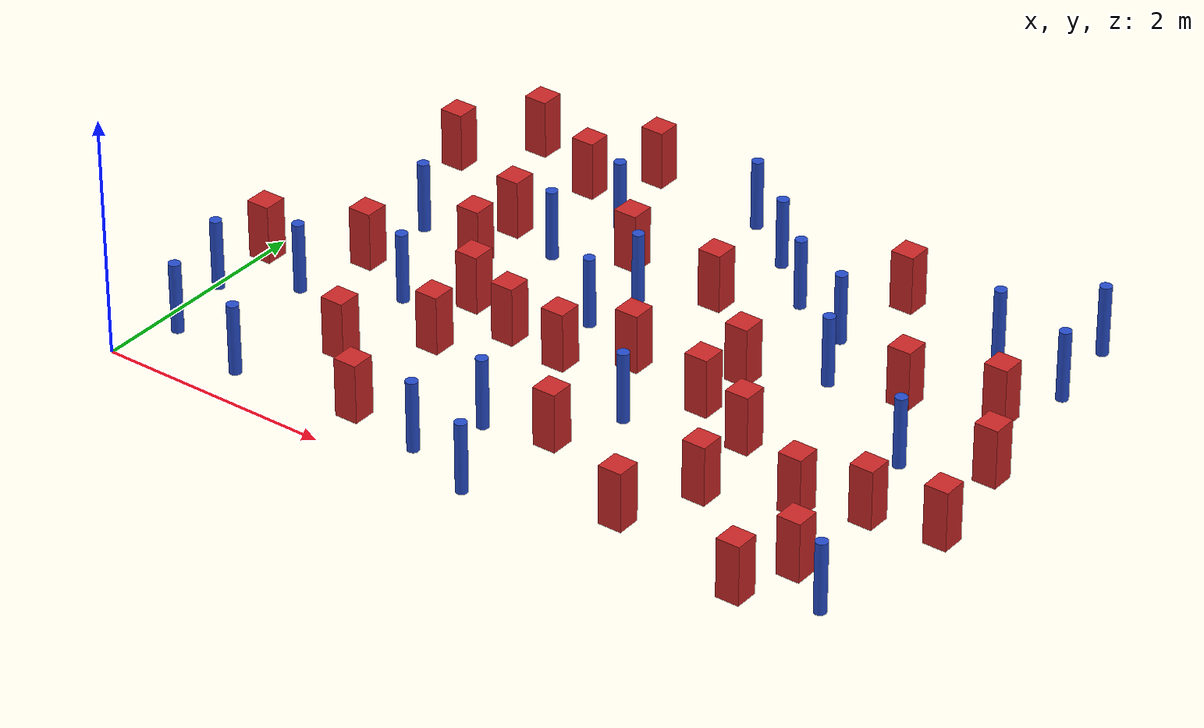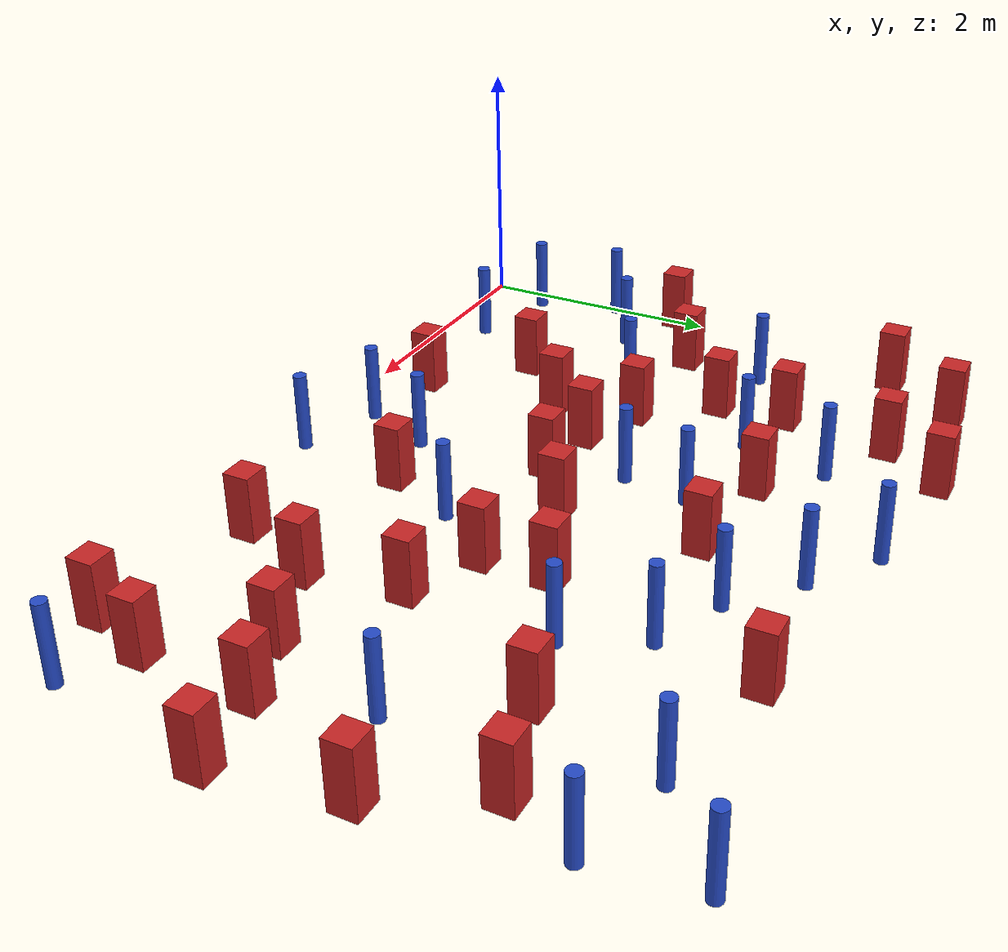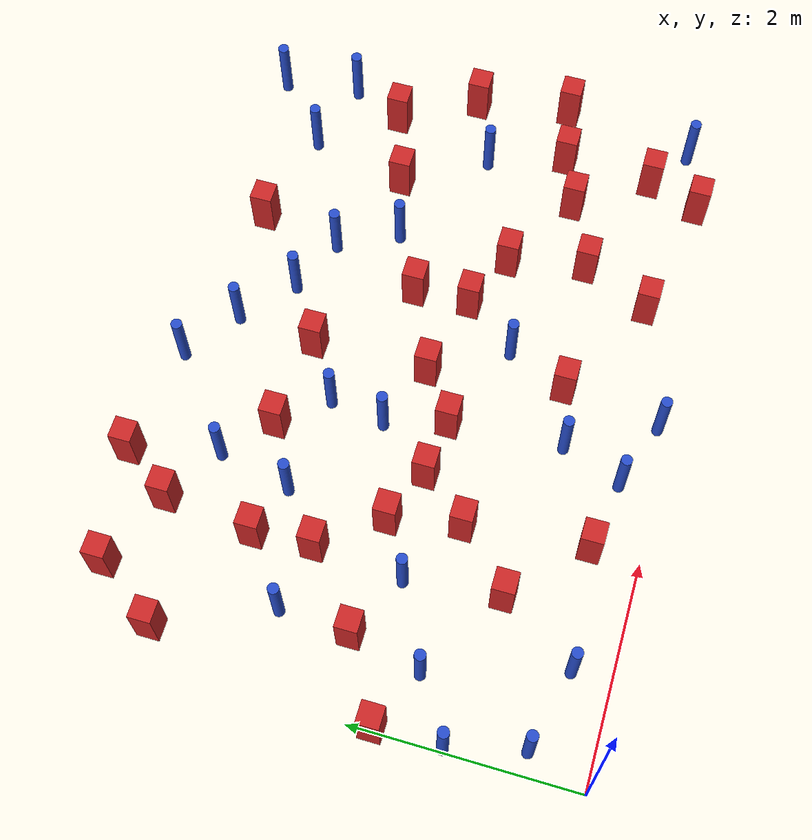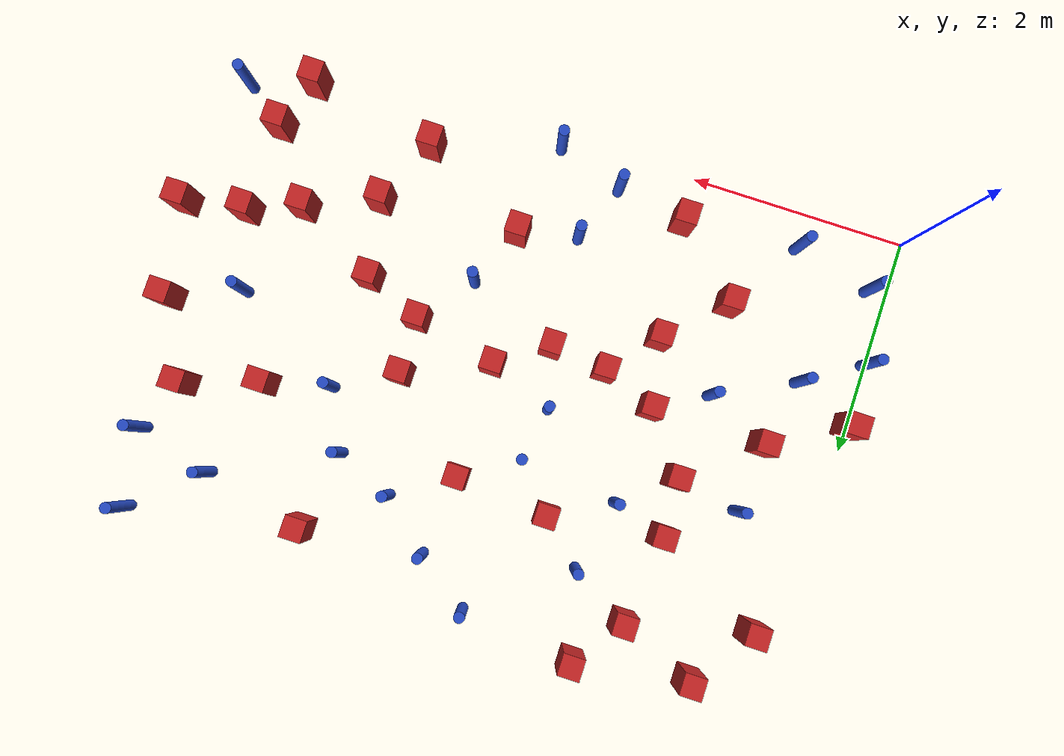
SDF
<sdf version="1.6">
 <model name="dense_56">
  <model name="square_post_obstacle0">
   <static>true</static>
   <pose>1.99976582621 0.442310010033 -6.11067671241e-07 -5.50515727128e-06 -8.79689657224e-07 2.37013304536e-05</pose>
   <link name="link">
    <pose>0 0 0.25 0 -0 0</pose>
    <inertial>
     <mass>100</mass>
     <inertia>
      <ixx>0.166667</ixx>
      <ixy>0</ixy>
      <ixz>0</ixz>
      <iyy>0.166667</iyy>
      <iyz>0</iyz>
      <izz>0.166667</izz>
     </inertia>
    </inertial>
    <collision name="collision"><geometry><box><size>.2 .2 .5</size></box></geometry></collision>
    <visual name="visual">
     <geometry><box><size>.2 .2 .5</size></box></geometry>
     <material>
      <script><name>Gazebo/Red</name><uri>file://media/materials/scripts/gazebo.material</uri></script>
     </material>
    </visual>
   </link>
  </model>
  <model name="square_post_obstacle4">
   <static>true</static>
   <pose>4.68333809107 1.11460655222 -6.11067671241e-07 -5.50515727128e-06 -8.79689657224e-07 2.37013304536e-05</pose>
   <link name="link">
    <pose>0 0 0.25 0 -0 0</pose>
    <inertial>
     <mass>100</mass>
     <inertia>
      <ixx>0.166667</ixx>
      <ixy>0</ixy>
      <ixz>0</ixz>
      <iyy>0.166667</iyy>
      <iyz>0</iyz>
      <izz>0.166667</izz>
     </inertia>
    </inertial>
    <collision name="collision"><geometry><box><size>.2 .2 .5</size></box></geometry></collision>
    <visual name="visual">
     <geometry><box><size>.2 .2 .5</size></box></geometry>
     <material>
      <script><name>Gazebo/Red</name><uri>file://media/materials/scripts/gazebo.material</uri></script>
     </material>
    </visual>
   </link>
  </model>
  <model name="square_post_obstacle5">
   <static>true</static>
   <pose>1.43845758457 4.05766834476 -6.11067671241e-07 -5.50515727128e-06 -8.79689657224e-07 2.37013304536e-05</pose>
   <link name="link">
    <pose>0 0 0.25 0 -0 0</pose>
    <inertial>
     <mass>100</mass>
     <inertia>
      <ixx>0.166667</ixx>
      <ixy>0</ixy>
      <ixz>0</ixz>
      <iyy>0.166667</iyy>
      <iyz>0</iyz>
      <izz>0.166667</izz>
     </inertia>
    </inertial>
    <collision name="collision"><geometry><box><size>.2 .2 .5</size></box></geometry></collision>
    <visual name="visual">
     <geometry><box><size>.2 .2 .5</size></box></geometry>
     <material>
      <script><name>Gazebo/Red</name><uri>file://media/materials/scripts/gazebo.material</uri></script>
     </material>
    </visual>
   </link>
  </model>
  <model name="square_post_obstacle10">
   <static>true</static>
   <pose>5.81792439504 1.58387289874 -6.11067671241e-07 -5.50515727128e-06 -8.79689657224e-07 2.37013304536e-05</pose>
   <link name="link">
    <pose>0 0 0.25 0 -0 0</pose>
    <inertial>
     <mass>100</mass>
     <inertia>
      <ixx>0.166667</ixx>
      <ixy>0</ixy>
      <ixz>0</ixz>
      <iyy>0.166667</iyy>
      <iyz>0</iyz>
      <izz>0.166667</izz>
     </inertia>
    </inertial>
    <collision name="collision"><geometry><box><size>.2 .2 .5</size></box></geometry></collision>
    <visual name="visual">
     <geometry><box><size>.2 .2 .5</size></box></geometry>
     <material>
      <script><name>Gazebo/Red</name><uri>file://media/materials/scripts/gazebo.material</uri></script>
     </material>
    </visual>
   </link>
  </model>
  <model name="square_post_obstacle16">
   <static>true</static>
   <pose>5.15076023287 3.03704496694 -6.11067671241e-07 -5.50515727128e-06 -8.79689657224e-07 2.37013304536e-05</pose>
   <link name="link">
    <pose>0 0 0.25 0 -0 0</pose>
    <inertial>
     <mass>100</mass>
     <inertia>
      <ixx>0.166667</ixx>
      <ixy>0</ixy>
      <ixz>0</ixz>
      <iyy>0.166667</iyy>
      <iyz>0</iyz>
      <izz>0.166667</izz>
     </inertia>
    </inertial>
    <collision name="collision"><geometry><box><size>.2 .2 .5</size></box></geometry></collision>
    <visual name="visual">
     <geometry><box><size>.2 .2 .5</size></box></geometry>
     <material>
      <script><name>Gazebo/Red</name><uri>file://media/materials/scripts/gazebo.material</uri></script>
     </material>
    </visual>
   </link>
  </model>
  <model name="pole_obstacle17">
   <static>true</static>
   <pose>3.76511676319 3.65166009717 -9.47619616065e-06 5.49618799737e-07 2.36310414051e-07 -1.55090534807e-07</pose>
   <link name="link">
    <pose>0 0 0.3 0 -0 0</pose>
    <inertial>
     <mass>1</mass>
     <inertia><ixx>0.145833</ixx><ixy>0</ixy><ixz>0</ixz><iyy>0.145833</iyy><iyz>0</iyz><izz>0.125</izz></inertia>
    </inertial>
    <collision name="collision">
     <geometry><cylinder><radius>0.05</radius><length>.6</length></cylinder></geometry>
    </collision>
    <visual name="visual">
     <geometry><cylinder><radius>0.05</radius><length>.6</length></cylinder></geometry>
     <material>
      <script><name>Gazebo/Blue</name><uri>file://media/materials/scripts/gazebo.material</uri></script>
     </material>
    </visual>
   </link>
  </model>
  <model name="square_post_obstacle33">
   <static>true</static>
   <pose>4.01620911778 2.05410688389 -6.11067671241e-07 -5.50515727128e-06 -8.79689657224e-07 2.37013304536e-05</pose>
   <link name="link">
    <pose>0 0 0.25 0 -0 0</pose>
    <inertial>
     <mass>100</mass>
     <inertia>
      <ixx>0.166667</ixx>
      <ixy>0</ixy>
      <ixz>0</ixz>
      <iyy>0.166667</iyy>
      <iyz>0</iyz>
      <izz>0.166667</izz>
     </inertia>
    </inertial>
    <collision name="collision"><geometry><box><size>.2 .2 .5</size></box></geometry></collision>
    <visual name="visual">
     <geometry><box><size>.2 .2 .5</size></box></geometry>
     <material>
      <script><name>Gazebo/Red</name><uri>file://media/materials/scripts/gazebo.material</uri></script>
     </material>
    </visual>
   </link>
  </model>
  <model name="square_post_obstacle36">
   <static>true</static>
   <pose>5.32715967315 1.39543265128 -6.11067671241e-07 -5.50515727128e-06 -8.79689657224e-07 2.37013304536e-05</pose>
   <link name="link">
    <pose>0 0 0.25 0 -0 0</pose>
    <inertial>
     <mass>100</mass>
     <inertia>
      <ixx>0.166667</ixx>
      <ixy>0</ixy>
      <ixz>0</ixz>
      <iyy>0.166667</iyy>
      <iyz>0</iyz>
      <izz>0.166667</izz>
     </inertia>
    </inertial>
    <collision name="collision"><geometry><box><size>.2 .2 .5</size></box></geometry></collision>
    <visual name="visual">
     <geometry><box><size>.2 .2 .5</size></box></geometry>
     <material>
      <script><name>Gazebo/Red</name><uri>file://media/materials/scripts/gazebo.material</uri></script>
     </material>
    </visual>
   </link>
  </model>
  <model name="pole_obstacle38">
   <static>true</static>
   <pose>2.86282230927 0.881759491907 -9.47619616065e-06 5.49618799738e-07 2.36310414075e-07 -1.55090534793e-07</pose>
   <link name="link">
    <pose>0 0 0.3 0 -0 0</pose>
    <inertial>
     <mass>1</mass>
     <inertia><ixx>0.145833</ixx><ixy>0</ixy><ixz>0</ixz><iyy>0.145833</iyy><iyz>0</iyz><izz>0.125</izz></inertia>
    </inertial>
    <collision name="collision">
     <geometry><cylinder><radius>0.05</radius><length>.6</length></cylinder></geometry>
    </collision>
    <visual name="visual">
     <geometry><cylinder><radius>0.05</radius><length>.6</length></cylinder></geometry>
     <material>
      <script><name>Gazebo/Blue</name><uri>file://media/materials/scripts/gazebo.material</uri></script>
     </material>
    </visual>
   </link>
  </model>
  <model name="square_post_obstacle38">
   <static>true</static>
   <pose>3.22928506262 3.29800616518 -6.11067671241e-07 -5.50515727128e-06 -8.79689657224e-07 2.37013304536e-05</pose>
   <link name="link">
    <pose>0 0 0.25 0 -0 0</pose>
    <inertial>
     <mass>100</mass>
     <inertia>
      <ixx>0.166667</ixx>
      <ixy>0</ixy>
      <ixz>0</ixz>
      <iyy>0.166667</iyy>
      <iyz>0</iyz>
      <izz>0.166667</izz>
     </inertia>
    </inertial>
    <collision name="collision"><geometry><box><size>.2 .2 .5</size></box></geometry></collision>
    <visual name="visual">
     <geometry><box><size>.2 .2 .5</size></box></geometry>
     <material>
      <script><name>Gazebo/Red</name><uri>file://media/materials/scripts/gazebo.material</uri></script>
     </material>
    </visual>
   </link>
  </model>
  <model name="square_post_obstacle46">
   <static>true</static>
   <pose>4.40503086688 0.486303597086 -6.11067671241e-07 -5.50515727128e-06 -8.79689657224e-07 2.37013304536e-05</pose>
   <link name="link">
    <pose>0 0 0.25 0 -0 0</pose>
    <inertial>
     <mass>100</mass>
     <inertia>
      <ixx>0.166667</ixx>
      <ixy>0</ixy>
      <ixz>0</ixz>
      <iyy>0.166667</iyy>
      <iyz>0</iyz>
      <izz>0.166667</izz>
     </inertia>
    </inertial>
    <collision name="collision"><geometry><box><size>.2 .2 .5</size></box></geometry></collision>
    <visual name="visual">
     <geometry><box><size>.2 .2 .5</size></box></geometry>
     <material>
      <script><name>Gazebo/Red</name><uri>file://media/materials/scripts/gazebo.material</uri></script>
     </material>
    </visual>
   </link>
  </model>
  <model name="square_post_obstacle52">
   <static>true</static>
   <pose>0.0257064140771 1.77946459958 -6.11067671241e-07 -5.50515727128e-06 -8.79689657224e-07 2.37013304536e-05</pose>
   <link name="link">
    <pose>0 0 0.25 0 -0 0</pose>
    <inertial>
     <mass>100</mass>
     <inertia>
      <ixx>0.166667</ixx>
      <ixy>0</ixy>
      <ixz>0</ixz>
      <iyy>0.166667</iyy>
      <iyz>0</iyz>
      <izz>0.166667</izz>
     </inertia>
    </inertial>
    <collision name="collision"><geometry><box><size>.2 .2 .5</size></box></geometry></collision>
    <visual name="visual">
     <geometry><box><size>.2 .2 .5</size></box></geometry>
     <material>
      <script><name>Gazebo/Red</name><uri>file://media/materials/scripts/gazebo.material</uri></script>
     </material>
    </visual>
   </link>
  </model>
  <model name="square_post_obstacle56">
   <static>true</static>
   <pose>6.2344315187 2.55958211341 -6.11067671241e-07 -5.50515727128e-06 -8.79689657224e-07 2.37013304536e-05</pose>
   <link name="link">
    <pose>0 0 0.25 0 -0 0</pose>
    <inertial>
     <mass>100</mass>
     <inertia>
      <ixx>0.166667</ixx>
      <ixy>0</ixy>
      <ixz>0</ixz>
      <iyy>0.166667</iyy>
      <iyz>0</iyz>
      <izz>0.166667</izz>
     </inertia>
    </inertial>
    <collision name="collision"><geometry><box><size>.2 .2 .5</size></box></geometry></collision>
    <visual name="visual">
     <geometry><box><size>.2 .2 .5</size></box></geometry>
     <material>
      <script><name>Gazebo/Red</name><uri>file://media/materials/scripts/gazebo.material</uri></script>
     </material>
    </visual>
   </link>
  </model>
  <model name="pole_obstacle59">
   <static>true</static>
   <pose>0.925027408041 0.346179515173 -9.47619616065e-06 5.49618799737e-07 2.36310414068e-07 -1.55090534796e-07</pose>
   <link name="link">
    <pose>0 0 0.3 0 -0 0</pose>
    <inertial>
     <mass>1</mass>
     <inertia><ixx>0.145833</ixx><ixy>0</ixy><ixz>0</ixz><iyy>0.145833</iyy><iyz>0</iyz><izz>0.125</izz></inertia>
    </inertial>
    <collision name="collision">
     <geometry><cylinder><radius>0.05</radius><length>.6</length></cylinder></geometry>
    </collision>
    <visual name="visual">
     <geometry><cylinder><radius>0.05</radius><length>.6</length></cylinder></geometry>
     <material>
      <script><name>Gazebo/Blue</name><uri>file://media/materials/scripts/gazebo.material</uri></script>
     </material>
    </visual>
   </link>
  </model>
  <model name="square_post_obstacle67">
   <static>true</static>
   <pose>0.333128637879 3.78804825467 -6.11067671241e-07 -5.50515727128e-06 -8.79689657224e-07 2.37013304536e-05</pose>
   <link name="link">
    <pose>0 0 0.25 0 -0 0</pose>
    <inertial>
     <mass>100</mass>
     <inertia>
      <ixx>0.166667</ixx>
      <ixy>0</ixy>
      <ixz>0</ixz>
      <iyy>0.166667</iyy>
      <iyz>0</iyz>
      <izz>0.166667</izz>
     </inertia>
    </inertial>
    <collision name="collision"><geometry><box><size>.2 .2 .5</size></box></geometry></collision>
    <visual name="visual">
     <geometry><box><size>.2 .2 .5</size></box></geometry>
     <material>
      <script><name>Gazebo/Red</name><uri>file://media/materials/scripts/gazebo.material</uri></script>
     </material>
    </visual>
   </link>
  </model>
  <model name="square_post_obstacle69">
   <static>true</static>
   <pose>1.76772093183 2.1682476589 -6.11067671241e-07 -5.50515727128e-06 -8.79689657224e-07 2.37013304536e-05</pose>
   <link name="link">
    <pose>0 0 0.25 0 -0 0</pose>
    <inertial>
     <mass>100</mass>
     <inertia>
      <ixx>0.166667</ixx>
      <ixy>0</ixy>
      <ixz>0</ixz>
      <iyy>0.166667</iyy>
      <iyz>0</iyz>
      <izz>0.166667</izz>
     </inertia>
    </inertial>
    <collision name="collision"><geometry><box><size>.2 .2 .5</size></box></geometry></collision>
    <visual name="visual">
     <geometry><box><size>.2 .2 .5</size></box></geometry>
     <material>
      <script><name>Gazebo/Red</name><uri>file://media/materials/scripts/gazebo.material</uri></script>
     </material>
    </visual>
   </link>
  </model>
  <model name="square_post_obstacle71">
   <static>true</static>
   <pose>4.41394076876 4.15950543328 -6.11067671241e-07 -5.50515727128e-06 -8.79689657224e-07 2.37013304536e-05</pose>
   <link name="link">
    <pose>0 0 0.25 0 -0 0</pose>
    <inertial>
     <mass>100</mass>
     <inertia>
      <ixx>0.166667</ixx>
      <ixy>0</ixy>
      <ixz>0</ixz>
      <iyy>0.166667</iyy>
      <iyz>0</iyz>
      <izz>0.166667</izz>
     </inertia>
    </inertial>
    <collision name="collision"><geometry><box><size>.2 .2 .5</size></box></geometry></collision>
    <visual name="visual">
     <geometry><box><size>.2 .2 .5</size></box></geometry>
     <material>
      <script><name>Gazebo/Red</name><uri>file://media/materials/scripts/gazebo.material</uri></script>
     </material>
    </visual>
   </link>
  </model>
  <model name="square_post_obstacle72">
   <static>true</static>
   <pose>4.54979881974 1.82802787597 -6.11067671241e-07 -5.50515727128e-06 -8.79689657224e-07 2.37013304536e-05</pose>
   <link name="link">
    <pose>0 0 0.25 0 -0 0</pose>
    <inertial>
     <mass>100</mass>
     <inertia>
      <ixx>0.166667</ixx>
      <ixy>0</ixy>
      <ixz>0</ixz>
      <iyy>0.166667</iyy>
      <iyz>0</iyz>
      <izz>0.166667</izz>
     </inertia>
    </inertial>
    <collision name="collision"><geometry><box><size>.2 .2 .5</size></box></geometry></collision>
    <visual name="visual">
     <geometry><box><size>.2 .2 .5</size></box></geometry>
     <material>
      <script><name>Gazebo/Red</name><uri>file://media/materials/scripts/gazebo.material</uri></script>
     </material>
    </visual>
   </link>
  </model>
  <model name="pole_obstacle76">
   <static>true</static>
   <pose>5.60401964578 2.29964641994 -9.47619616065e-06 5.49618799738e-07 2.36310414051e-07 -1.55090534805e-07</pose>
   <link name="link">
    <pose>0 0 0.3 0 -0 0</pose>
    <inertial>
     <mass>1</mass>
     <inertia><ixx>0.145833</ixx><ixy>0</ixy><ixz>0</ixz><iyy>0.145833</iyy><iyz>0</iyz><izz>0.125</izz></inertia>
    </inertial>
    <collision name="collision">
     <geometry><cylinder><radius>0.05</radius><length>.6</length></cylinder></geometry>
    </collision>
    <visual name="visual">
     <geometry><cylinder><radius>0.05</radius><length>.6</length></cylinder></geometry>
     <material>
      <script><name>Gazebo/Blue</name><uri>file://media/materials/scripts/gazebo.material</uri></script>
     </material>
    </visual>
   </link>
  </model>
  <model name="square_post_obstacle81">
   <static>true</static>
   <pose>1.37803710354 1.04155616456 -6.11067671241e-07 -5.50515727128e-06 -8.79689657224e-07 2.37013304536e-05</pose>
   <link name="link">
    <pose>0 0 0.25 0 -0 0</pose>
    <inertial>
     <mass>100</mass>
     <inertia>
      <ixx>0.166667</ixx>
      <ixy>0</ixy>
      <ixz>0</ixz>
      <iyy>0.166667</iyy>
      <iyz>0</iyz>
      <izz>0.166667</izz>
     </inertia>
    </inertial>
    <collision name="collision"><geometry><box><size>.2 .2 .5</size></box></geometry></collision>
    <visual name="visual">
     <geometry><box><size>.2 .2 .5</size></box></geometry>
     <material>
      <script><name>Gazebo/Red</name><uri>file://media/materials/scripts/gazebo.material</uri></script>
     </material>
    </visual>
   </link>
  </model>
  <model name="pole_obstacle93">
   <static>true</static>
   <pose>3.26941782002 0.120895018381 -9.47619616065e-06 5.49618799737e-07 2.36310414066e-07 -1.55090534798e-07</pose>
   <link name="link">
    <pose>0 0 0.3 0 -0 0</pose>
    <inertial>
     <mass>1</mass>
     <inertia><ixx>0.145833</ixx><ixy>0</ixy><ixz>0</ixz><iyy>0.145833</iyy><iyz>0</iyz><izz>0.125</izz></inertia>
    </inertial>
    <collision name="collision">
     <geometry><cylinder><radius>0.05</radius><length>.6</length></cylinder></geometry>
    </collision>
    <visual name="visual">
     <geometry><cylinder><radius>0.05</radius><length>.6</length></cylinder></geometry>
     <material>
      <script><name>Gazebo/Blue</name><uri>file://media/materials/scripts/gazebo.material</uri></script>
     </material>
    </visual>
   </link>
  </model>
  <model name="pole_obstacle95">
   <static>true</static>
   <pose>2.64689914589 0.333201132117 -9.47619616065e-06 5.49618799738e-07 2.36310414074e-07 -1.55090534794e-07</pose>
   <link name="link">
    <pose>0 0 0.3 0 -0 0</pose>
    <inertial>
     <mass>1</mass>
     <inertia><ixx>0.145833</ixx><ixy>0</ixy><ixz>0</ixz><iyy>0.145833</iyy><iyz>0</iyz><izz>0.125</izz></inertia>
    </inertial>
    <collision name="collision">
     <geometry><cylinder><radius>0.05</radius><length>.6</length></cylinder></geometry>
    </collision>
    <visual name="visual">
     <geometry><cylinder><radius>0.05</radius><length>.6</length></cylinder></geometry>
     <material>
      <script><name>Gazebo/Blue</name><uri>file://media/materials/scripts/gazebo.material</uri></script>
     </material>
    </visual>
   </link>
  </model>
  <model name="pole_obstacle96">
   <static>true</static>
   <pose>2.81538231102 4.40827197065 -9.47619616065e-06 5.49618799738e-07 2.3631041406e-07 -1.55090534801e-07</pose>
   <link name="link">
    <pose>0 0 0.3 0 -0 0</pose>
    <inertial>
     <mass>1</mass>
     <inertia><ixx>0.145833</ixx><ixy>0</ixy><ixz>0</ixz><iyy>0.145833</iyy><iyz>0</iyz><izz>0.125</izz></inertia>
    </inertial>
    <collision name="collision">
     <geometry><cylinder><radius>0.05</radius><length>.6</length></cylinder></geometry>
    </collision>
    <visual name="visual">
     <geometry><cylinder><radius>0.05</radius><length>.6</length></cylinder></geometry>
     <material>
      <script><name>Gazebo/Blue</name><uri>file://media/materials/scripts/gazebo.material</uri></script>
     </material>
    </visual>
   </link>
  </model>
  <model name="square_post_obstacle84">
   <static>true</static>
   <pose>0.739477897886 4.3556769147 -6.11067671241e-07 -5.50515727128e-06 -8.79689657224e-07 2.37013304536e-05</pose>
   <link name="link">
    <pose>0 0 0.25 0 -0 0</pose>
    <inertial>
     <mass>100</mass>
     <inertia>
      <ixx>0.166667</ixx>
      <ixy>0</ixy>
      <ixz>0</ixz>
      <iyy>0.166667</iyy>
      <iyz>0</iyz>
      <izz>0.166667</izz>
     </inertia>
    </inertial>
    <collision name="collision"><geometry><box><size>.2 .2 .5</size></box></geometry></collision>
    <visual name="visual">
     <geometry><box><size>.2 .2 .5</size></box></geometry>
     <material>
      <script><name>Gazebo/Red</name><uri>file://media/materials/scripts/gazebo.material</uri></script>
     </material>
    </visual>
   </link>
  </model>
  <model name="square_post_obstacle85">
   <static>true</static>
   <pose>3.24167538499 2.23248687007 -6.11067671241e-07 -5.50515727128e-06 -8.79689657224e-07 2.37013304536e-05</pose>
   <link name="link">
    <pose>0 0 0.25 0 -0 0</pose>
    <inertial>
     <mass>100</mass>
     <inertia>
      <ixx>0.166667</ixx>
      <ixy>0</ixy>
      <ixz>0</ixz>
      <iyy>0.166667</iyy>
      <iyz>0</iyz>
      <izz>0.166667</izz>
     </inertia>
    </inertial>
    <collision name="collision"><geometry><box><size>.2 .2 .5</size></box></geometry></collision>
    <visual name="visual">
     <geometry><box><size>.2 .2 .5</size></box></geometry>
     <material>
      <script><name>Gazebo/Red</name><uri>file://media/materials/scripts/gazebo.material</uri></script>
     </material>
    </visual>
   </link>
  </model>
  <model name="square_post_obstacle101">
   <static>true</static>
   <pose>1.33228030267 3.23295579836 -6.11067671241e-07 -5.50515727128e-06 -8.79689657224e-07 2.37013304536e-05</pose>
   <link name="link">
    <pose>0 0 0.25 0 -0 0</pose>
    <inertial>
     <mass>100</mass>
     <inertia>
      <ixx>0.166667</ixx>
      <ixy>0</ixy>
      <ixz>0</ixz>
      <iyy>0.166667</iyy>
      <iyz>0</iyz>
      <izz>0.166667</izz>
     </inertia>
    </inertial>
    <collision name="collision"><geometry><box><size>.2 .2 .5</size></box></geometry></collision>
    <visual name="visual">
     <geometry><box><size>.2 .2 .5</size></box></geometry>
     <material>
      <script><name>Gazebo/Red</name><uri>file://media/materials/scripts/gazebo.material</uri></script>
     </material>
    </visual>
   </link>
  </model>
  <model name="pole_obstacle118">
   <static>true</static>
   <pose>4.56173694156 2.88470015818 -9.47619616065e-06 5.49618799738e-07 2.36310414051e-07 -1.55090534805e-07</pose>
   <link name="link">
    <pose>0 0 0.3 0 -0 0</pose>
    <inertial>
     <mass>1</mass>
     <inertia><ixx>0.145833</ixx><ixy>0</ixy><ixz>0</ixz><iyy>0.145833</iyy><iyz>0</iyz><izz>0.125</izz></inertia>
    </inertial>
    <collision name="collision">
     <geometry><cylinder><radius>0.05</radius><length>.6</length></cylinder></geometry>
    </collision>
    <visual name="visual">
     <geometry><cylinder><radius>0.05</radius><length>.6</length></cylinder></geometry>
     <material>
      <script><name>Gazebo/Blue</name><uri>file://media/materials/scripts/gazebo.material</uri></script>
     </material>
    </visual>
   </link>
  </model>
  <model name="pole_obstacle126">
   <static>true</static>
   <pose>2.64059461518 2.47193051487 -9.47619616065e-06 5.49618799737e-07 2.36310414051e-07 -1.55090534807e-07</pose>
   <link name="link">
    <pose>0 0 0.3 0 -0 0</pose>
    <inertial>
     <mass>1</mass>
     <inertia><ixx>0.145833</ixx><ixy>0</ixy><ixz>0</ixz><iyy>0.145833</iyy><iyz>0</iyz><izz>0.125</izz></inertia>
    </inertial>
    <collision name="collision">
     <geometry><cylinder><radius>0.05</radius><length>.6</length></cylinder></geometry>
    </collision>
    <visual name="visual">
     <geometry><cylinder><radius>0.05</radius><length>.6</length></cylinder></geometry>
     <material>
      <script><name>Gazebo/Blue</name><uri>file://media/materials/scripts/gazebo.material</uri></script>
     </material>
    </visual>
   </link>
  </model>
  <model name="pole_obstacle127">
   <static>true</static>
   <pose>1.9676107457 3.75242339498 -9.47619616065e-06 5.49618799737e-07 2.36310414059e-07 -1.550905348e-07</pose>
   <link name="link">
    <pose>0 0 0.3 0 -0 0</pose>
    <inertial>
     <mass>1</mass>
     <inertia><ixx>0.145833</ixx><ixy>0</ixy><ixz>0</ixz><iyy>0.145833</iyy><iyz>0</iyz><izz>0.125</izz></inertia>
    </inertial>
    <collision name="collision">
     <geometry><cylinder><radius>0.05</radius><length>.6</length></cylinder></geometry>
    </collision>
    <visual name="visual">
     <geometry><cylinder><radius>0.05</radius><length>.6</length></cylinder></geometry>
     <material>
      <script><name>Gazebo/Blue</name><uri>file://media/materials/scripts/gazebo.material</uri></script>
     </material>
    </visual>
   </link>
  </model>
  <model name="pole_obstacle131">
   <static>true</static>
   <pose>0.563899085958 1.53096457339 -9.47619616065e-06 5.49618799738e-07 2.36310414061e-07 -1.55090534801e-07</pose>
   <link name="link">
    <pose>0 0 0.3 0 -0 0</pose>
    <inertial>
     <mass>1</mass>
     <inertia><ixx>0.145833</ixx><ixy>0</ixy><ixz>0</ixz><iyy>0.145833</iyy><iyz>0</iyz><izz>0.125</izz></inertia>
    </inertial>
    <collision name="collision">
     <geometry><cylinder><radius>0.05</radius><length>.6</length></cylinder></geometry>
    </collision>
    <visual name="visual">
     <geometry><cylinder><radius>0.05</radius><length>.6</length></cylinder></geometry>
     <material>
      <script><name>Gazebo/Blue</name><uri>file://media/materials/scripts/gazebo.material</uri></script>
     </material>
    </visual>
   </link>
  </model>
  <model name="pole_obstacle133">
   <static>true</static>
   <pose>3.64027596968 1.56775584052 -9.47619616065e-06 5.49618799737e-07 2.36310414072e-07 -1.55090534793e-07</pose>
   <link name="link">
    <pose>0 0 0.3 0 -0 0</pose>
    <inertial>
     <mass>1</mass>
     <inertia><ixx>0.145833</ixx><ixy>0</ixy><ixz>0</ixz><iyy>0.145833</iyy><iyz>0</iyz><izz>0.125</izz></inertia>
    </inertial>
    <collision name="collision">
     <geometry><cylinder><radius>0.05</radius><length>.6</length></cylinder></geometry>
    </collision>
    <visual name="visual">
     <geometry><cylinder><radius>0.05</radius><length>.6</length></cylinder></geometry>
     <material>
      <script><name>Gazebo/Blue</name><uri>file://media/materials/scripts/gazebo.material</uri></script>
     </material>
    </visual>
   </link>
  </model>
  <model name="pole_obstacle136">
   <static>true</static>
   <pose>5.36938665774 3.96076599892 -9.47619616065e-06 5.49618799737e-07 2.36310414054e-07 -1.55090534804e-07</pose>
   <link name="link">
    <pose>0 0 0.3 0 -0 0</pose>
    <inertial>
     <mass>1</mass>
     <inertia><ixx>0.145833</ixx><ixy>0</ixy><ixz>0</ixz><iyy>0.145833</iyy><iyz>0</iyz><izz>0.125</izz></inertia>
    </inertial>
    <collision name="collision">
     <geometry><cylinder><radius>0.05</radius><length>.6</length></cylinder></geometry>
    </collision>
    <visual name="visual">
     <geometry><cylinder><radius>0.05</radius><length>.6</length></cylinder></geometry>
     <material>
      <script><name>Gazebo/Blue</name><uri>file://media/materials/scripts/gazebo.material</uri></script>
     </material>
    </visual>
   </link>
  </model>
  <model name="square_post_obstacle119">
   <static>true</static>
   <pose>5.60643136561 0.258793017003 -6.11067671241e-07 -5.50515727128e-06 -8.79689657224e-07 2.37013304536e-05</pose>
   <link name="link">
    <pose>0 0 0.25 0 -0 0</pose>
    <inertial>
     <mass>100</mass>
     <inertia>
      <ixx>0.166667</ixx>
      <ixy>0</ixy>
      <ixz>0</ixz>
      <iyy>0.166667</iyy>
      <iyz>0</iyz>
      <izz>0.166667</izz>
     </inertia>
    </inertial>
    <collision name="collision"><geometry><box><size>.2 .2 .5</size></box></geometry></collision>
    <visual name="visual">
     <geometry><box><size>.2 .2 .5</size></box></geometry>
     <material>
      <script><name>Gazebo/Red</name><uri>file://media/materials/scripts/gazebo.material</uri></script>
     </material>
    </visual>
   </link>
  </model>
  <model name="square_post_obstacle124">
   <static>true</static>
   <pose>6.39183244544 1.68362561915 -6.11067671241e-07 -5.50515727128e-06 -8.79689657224e-07 2.37013304536e-05</pose>
   <link name="link">
    <pose>0 0 0.25 0 -0 0</pose>
    <inertial>
     <mass>100</mass>
     <inertia>
      <ixx>0.166667</ixx>
      <ixy>0</ixy>
      <ixz>0</ixz>
      <iyy>0.166667</iyy>
      <iyz>0</iyz>
      <izz>0.166667</izz>
     </inertia>
    </inertial>
    <collision name="collision"><geometry><box><size>.2 .2 .5</size></box></geometry></collision>
    <visual name="visual">
     <geometry><box><size>.2 .2 .5</size></box></geometry>
     <material>
      <script><name>Gazebo/Red</name><uri>file://media/materials/scripts/gazebo.material</uri></script>
     </material>
    </visual>
   </link>
  </model>
  <model name="pole_obstacle146">
   <static>true</static>
   <pose>6.19688774363 0.453857563228 -9.47619616065e-06 5.49618799737e-07 2.3631041407e-07 -1.55090534796e-07</pose>
   <link name="link">
    <pose>0 0 0.3 0 -0 0</pose>
    <inertial>
     <mass>1</mass>
     <inertia><ixx>0.145833</ixx><ixy>0</ixy><ixz>0</ixz><iyy>0.145833</iyy><iyz>0</iyz><izz>0.125</izz></inertia>
    </inertial>
    <collision name="collision">
     <geometry><cylinder><radius>0.05</radius><length>.6</length></cylinder></geometry>
    </collision>
    <visual name="visual">
     <geometry><cylinder><radius>0.05</radius><length>.6</length></cylinder></geometry>
     <material>
      <script><name>Gazebo/Blue</name><uri>file://media/materials/scripts/gazebo.material</uri></script>
     </material>
    </visual>
   </link>
  </model>
  <model name="pole_obstacle147">
   <static>true</static>
   <pose>1.81179698169 3.08271361004 -9.47619616065e-06 5.49618799737e-07 2.36310414062e-07 -1.55090534798e-07</pose>
   <link name="link">
    <pose>0 0 0.3 0 -0 0</pose>
    <inertial>
     <mass>1</mass>
     <inertia><ixx>0.145833</ixx><ixy>0</ixy><ixz>0</ixz><iyy>0.145833</iyy><iyz>0</iyz><izz>0.125</izz></inertia>
    </inertial>
    <collision name="collision">
     <geometry><cylinder><radius>0.05</radius><length>.6</length></cylinder></geometry>
    </collision>
    <visual name="visual">
     <geometry><cylinder><radius>0.05</radius><length>.6</length></cylinder></geometry>
     <material>
      <script><name>Gazebo/Blue</name><uri>file://media/materials/scripts/gazebo.material</uri></script>
     </material>
    </visual>
   </link>
  </model>
  <model name="square_post_obstacle137">
   <static>true</static>
   <pose>0.71732305236 2.17078598252 -6.11067671241e-07 -5.50515727128e-06 -8.79689657224e-07 2.37013304536e-05</pose>
   <link name="link">
    <pose>0 0 0.25 0 -0 0</pose>
    <inertial>
     <mass>100</mass>
     <inertia>
      <ixx>0.166667</ixx>
      <ixy>0</ixy>
      <ixz>0</ixz>
      <iyy>0.166667</iyy>
      <iyz>0</iyz>
      <izz>0.166667</izz>
     </inertia>
    </inertial>
    <collision name="collision"><geometry><box><size>.2 .2 .5</size></box></geometry></collision>
    <visual name="visual">
     <geometry><box><size>.2 .2 .5</size></box></geometry>
     <material>
      <script><name>Gazebo/Red</name><uri>file://media/materials/scripts/gazebo.material</uri></script>
     </material>
    </visual>
   </link>
  </model>
  <model name="square_post_obstacle150">
   <static>true</static>
   <pose>1.88636288929 1.53490131025 -6.11067671241e-07 -5.50515727128e-06 -8.79689657224e-07 2.37013304536e-05</pose>
   <link name="link">
    <pose>0 0 0.25 0 -0 0</pose>
    <inertial>
     <mass>100</mass>
     <inertia>
      <ixx>0.166667</ixx>
      <ixy>0</ixy>
      <ixz>0</ixz>
      <iyy>0.166667</iyy>
      <iyz>0</iyz>
      <izz>0.166667</izz>
     </inertia>
    </inertial>
    <collision name="collision"><geometry><box><size>.2 .2 .5</size></box></geometry></collision>
    <visual name="visual">
     <geometry><box><size>.2 .2 .5</size></box></geometry>
     <material>
      <script><name>Gazebo/Red</name><uri>file://media/materials/scripts/gazebo.material</uri></script>
     </material>
    </visual>
   </link>
  </model>
  <model name="square_post_obstacle157">
   <static>true</static>
   <pose>4.00620310391 2.5717258599 -6.11067671241e-07 -5.50515727128e-06 -8.79689657224e-07 2.37013304536e-05</pose>
   <link name="link">
    <pose>0 0 0.25 0 -0 0</pose>
    <inertial>
     <mass>100</mass>
     <inertia>
      <ixx>0.166667</ixx>
      <ixy>0</ixy>
      <ixz>0</ixz>
      <iyy>0.166667</iyy>
      <iyz>0</iyz>
      <izz>0.166667</izz>
     </inertia>
    </inertial>
    <collision name="collision"><geometry><box><size>.2 .2 .5</size></box></geometry></collision>
    <visual name="visual">
     <geometry><box><size>.2 .2 .5</size></box></geometry>
     <material>
      <script><name>Gazebo/Red</name><uri>file://media/materials/scripts/gazebo.material</uri></script>
     </material>
    </visual>
   </link>
  </model>
  <model name="pole_obstacle164">
   <static>true</static>
   <pose>0.757805686223 2.8145874232 -9.47619616065e-06 5.49618799737e-07 2.36310414066e-07 -1.55090534797e-07</pose>
   <link name="link">
    <pose>0 0 0.3 0 -0 0</pose>
    <inertial>
     <mass>1</mass>
     <inertia><ixx>0.145833</ixx><ixy>0</ixy><ixz>0</ixz><iyy>0.145833</iyy><iyz>0</iyz><izz>0.125</izz></inertia>
    </inertial>
    <collision name="collision">
     <geometry><cylinder><radius>0.05</radius><length>.6</length></cylinder></geometry>
    </collision>
    <visual name="visual">
     <geometry><cylinder><radius>0.05</radius><length>.6</length></cylinder></geometry>
     <material>
      <script><name>Gazebo/Blue</name><uri>file://media/materials/scripts/gazebo.material</uri></script>
     </material>
    </visual>
   </link>
  </model>
  <model name="pole_obstacle169">
   <static>true</static>
   <pose>0.03034951504 1.19016670045 -9.47619616065e-06 5.49618799737e-07 2.36310414056e-07 -1.55090534801e-07</pose>
   <link name="link">
    <pose>0 0 0.3 0 -0 0</pose>
    <inertial>
     <mass>1</mass>
     <inertia><ixx>0.145833</ixx><ixy>0</ixy><ixz>0</ixz><iyy>0.145833</iyy><iyz>0</iyz><izz>0.125</izz></inertia>
    </inertial>
    <collision name="collision">
     <geometry><cylinder><radius>0.05</radius><length>.6</length></cylinder></geometry>
    </collision>
    <visual name="visual">
     <geometry><cylinder><radius>0.05</radius><length>.6</length></cylinder></geometry>
     <material>
      <script><name>Gazebo/Blue</name><uri>file://media/materials/scripts/gazebo.material</uri></script>
     </material>
    </visual>
   </link>
  </model>
  <model name="pole_obstacle173">
   <static>true</static>
   <pose>1.28737014026 1.89392033038 -9.47619616065e-06 5.49618799737e-07 2.36310414065e-07 -1.55090534798e-07</pose>
   <link name="link">
    <pose>0 0 0.3 0 -0 0</pose>
    <inertial>
     <mass>1</mass>
     <inertia><ixx>0.145833</ixx><ixy>0</ixy><ixz>0</ixz><iyy>0.145833</iyy><iyz>0</iyz><izz>0.125</izz></inertia>
    </inertial>
    <collision name="collision">
     <geometry><cylinder><radius>0.05</radius><length>.6</length></cylinder></geometry>
    </collision>
    <visual name="visual">
     <geometry><cylinder><radius>0.05</radius><length>.6</length></cylinder></geometry>
     <material>
      <script><name>Gazebo/Blue</name><uri>file://media/materials/scripts/gazebo.material</uri></script>
     </material>
    </visual>
   </link>
  </model>
  <model name="pole_obstacle175">
   <static>true</static>
   <pose>0.195743922408 0.525670883698 -9.47619616065e-06 5.49618799738e-07 2.36310414058e-07 -1.55090534801e-07</pose>
   <link name="link">
    <pose>0 0 0.3 0 -0 0</pose>
    <inertial>
     <mass>1</mass>
     <inertia><ixx>0.145833</ixx><ixy>0</ixy><ixz>0</ixz><iyy>0.145833</iyy><iyz>0</iyz><izz>0.125</izz></inertia>
    </inertial>
    <collision name="collision">
     <geometry><cylinder><radius>0.05</radius><length>.6</length></cylinder></geometry>
    </collision>
    <visual name="visual">
     <geometry><cylinder><radius>0.05</radius><length>.6</length></cylinder></geometry>
     <material>
      <script><name>Gazebo/Blue</name><uri>file://media/materials/scripts/gazebo.material</uri></script>
     </material>
    </visual>
   </link>
  </model>
  <model name="square_post_obstacle165">
   <static>true</static>
   <pose>3.40453741087 1.01307192407 -6.11067671241e-07 -5.50515727128e-06 -8.79689657224e-07 2.37013304536e-05</pose>
   <link name="link">
    <pose>0 0 0.25 0 -0 0</pose>
    <inertial>
     <mass>100</mass>
     <inertia>
      <ixx>0.166667</ixx>
      <ixy>0</ixy>
      <ixz>0</ixz>
      <iyy>0.166667</iyy>
      <iyz>0</iyz>
      <izz>0.166667</izz>
     </inertia>
    </inertial>
    <collision name="collision"><geometry><box><size>.2 .2 .5</size></box></geometry></collision>
    <visual name="visual">
     <geometry><box><size>.2 .2 .5</size></box></geometry>
     <material>
      <script><name>Gazebo/Red</name><uri>file://media/materials/scripts/gazebo.material</uri></script>
     </material>
    </visual>
   </link>
  </model>
  <model name="square_post_obstacle168">
   <static>true</static>
   <pose>1.77524278214 4.52367774128 -6.11067671241e-07 -5.50515727128e-06 -8.79689657224e-07 2.37013304536e-05</pose>
   <link name="link">
    <pose>0 0 0.25 0 -0 0</pose>
    <inertial>
     <mass>100</mass>
     <inertia>
      <ixx>0.166667</ixx>
      <ixy>0</ixy>
      <ixz>0</ixz>
      <iyy>0.166667</iyy>
      <iyz>0</iyz>
      <izz>0.166667</izz>
     </inertia>
    </inertial>
    <collision name="collision"><geometry><box><size>.2 .2 .5</size></box></geometry></collision>
    <visual name="visual">
     <geometry><box><size>.2 .2 .5</size></box></geometry>
     <material>
      <script><name>Gazebo/Red</name><uri>file://media/materials/scripts/gazebo.material</uri></script>
     </material>
    </visual>
   </link>
  </model>
  <model name="pole_obstacle185">
   <static>true</static>
   <pose>3.30954706999 4.05271271793 -9.47619616065e-06 5.49618799738e-07 2.3631041406e-07 -1.55090534801e-07</pose>
   <link name="link">
    <pose>0 0 0.3 0 -0 0</pose>
    <inertial>
     <mass>1</mass>
     <inertia><ixx>0.145833</ixx><ixy>0</ixy><ixz>0</ixz><iyy>0.145833</iyy><iyz>0</iyz><izz>0.125</izz></inertia>
    </inertial>
    <collision name="collision">
     <geometry><cylinder><radius>0.05</radius><length>.6</length></cylinder></geometry>
    </collision>
    <visual name="visual">
     <geometry><cylinder><radius>0.05</radius><length>.6</length></cylinder></geometry>
     <material>
      <script><name>Gazebo/Blue</name><uri>file://media/materials/scripts/gazebo.material</uri></script>
     </material>
    </visual>
   </link>
  </model>
  <model name="square_post_obstacle173">
   <static>true</static>
   <pose>5.85066722193 3.26485960037 -6.11067671241e-07 -5.50515727128e-06 -8.79689657224e-07 2.37013304536e-05</pose>
   <link name="link">
    <pose>0 0 0.25 0 -0 0</pose>
    <inertial>
     <mass>100</mass>
     <inertia>
      <ixx>0.166667</ixx>
      <ixy>0</ixy>
      <ixz>0</ixz>
      <iyy>0.166667</iyy>
      <iyz>0</iyz>
      <izz>0.166667</izz>
     </inertia>
    </inertial>
    <collision name="collision"><geometry><box><size>.2 .2 .5</size></box></geometry></collision>
    <visual name="visual">
     <geometry><box><size>.2 .2 .5</size></box></geometry>
     <material>
      <script><name>Gazebo/Red</name><uri>file://media/materials/scripts/gazebo.material</uri></script>
     </material>
    </visual>
   </link>
  </model>
  <model name="square_post_obstacle186">
   <static>true</static>
   <pose>2.26548481791 1.97073641685 -6.11067671241e-07 -5.50515727128e-06 -8.79689657224e-07 2.37013304536e-05</pose>
   <link name="link">
    <pose>0 0 0.25 0 -0 0</pose>
    <inertial>
     <mass>100</mass>
     <inertia>
      <ixx>0.166667</ixx>
      <ixy>0</ixy>
      <ixz>0</ixz>
      <iyy>0.166667</iyy>
      <iyz>0</iyz>
      <izz>0.166667</izz>
     </inertia>
    </inertial>
    <collision name="collision"><geometry><box><size>.2 .2 .5</size></box></geometry></collision>
    <visual name="visual">
     <geometry><box><size>.2 .2 .5</size></box></geometry>
     <material>
      <script><name>Gazebo/Red</name><uri>file://media/materials/scripts/gazebo.material</uri></script>
     </material>
    </visual>
   </link>
  </model>
  <model name="square_post_obstacle198">
   <static>true</static>
   <pose>1.36275757598 2.69778762125 -6.11067671241e-07 -5.50515727128e-06 -8.79689657224e-07 2.37013304536e-05</pose>
   <link name="link">
    <pose>0 0 0.25 0 -0 0</pose>
    <inertial>
     <mass>100</mass>
     <inertia>
      <ixx>0.166667</ixx>
      <ixy>0</ixy>
      <ixz>0</ixz>
      <iyy>0.166667</iyy>
      <iyz>0</iyz>
      <izz>0.166667</izz>
     </inertia>
    </inertial>
    <collision name="collision"><geometry><box><size>.2 .2 .5</size></box></geometry></collision>
    <visual name="visual">
     <geometry><box><size>.2 .2 .5</size></box></geometry>
     <material>
      <script><name>Gazebo/Red</name><uri>file://media/materials/scripts/gazebo.material</uri></script>
     </material>
    </visual>
   </link>
  </model>
  <model name="pole_obstacle194">
   <static>true</static>
   <pose>6.06881353897 3.76559378281 -9.47619616065e-06 5.49618799738e-07 2.36310414051e-07 -1.55090534805e-07</pose>
   <link name="link">
    <pose>0 0 0.3 0 -0 0</pose>
    <inertial>
     <mass>1</mass>
     <inertia><ixx>0.145833</ixx><ixy>0</ixy><ixz>0</ixz><iyy>0.145833</iyy><iyz>0</iyz><izz>0.125</izz></inertia>
    </inertial>
    <collision name="collision">
     <geometry><cylinder><radius>0.05</radius><length>.6</length></cylinder></geometry>
    </collision>
    <visual name="visual">
     <geometry><cylinder><radius>0.05</radius><length>.6</length></cylinder></geometry>
     <material>
      <script><name>Gazebo/Blue</name><uri>file://media/materials/scripts/gazebo.material</uri></script>
     </material>
    </visual>
   </link>
  </model>
  <model name="pole_obstacle216">
   <static>true</static>
   <pose>5.9693422289 4.47676052788 -9.47619616065e-06 5.49618799737e-07 2.36310414037e-07 -1.55090534814e-07</pose>
   <link name="link">
    <pose>0 0 0.3 0 -0 0</pose>
    <inertial>
     <mass>1</mass>
     <inertia><ixx>0.145833</ixx><ixy>0</ixy><ixz>0</ixz><iyy>0.145833</iyy><iyz>0</iyz><izz>0.125</izz></inertia>
    </inertial>
    <collision name="collision">
     <geometry><cylinder><radius>0.05</radius><length>.6</length></cylinder></geometry>
    </collision>
    <visual name="visual">
     <geometry><cylinder><radius>0.05</radius><length>.6</length></cylinder></geometry>
     <material>
      <script><name>Gazebo/Blue</name><uri>file://media/materials/scripts/gazebo.material</uri></script>
     </material>
    </visual>
   </link>
  </model>
  <model name="pole_obstacle219">
   <static>true</static>
   <pose>2.72493630834 2.9779754361 -9.47619616065e-06 5.49618799737e-07 2.36310414051e-07 -1.55090534807e-07</pose>
   <link name="link">
    <pose>0 0 0.3 0 -0 0</pose>
    <inertial>
     <mass>1</mass>
     <inertia><ixx>0.145833</ixx><ixy>0</ixy><ixz>0</ixz><iyy>0.145833</iyy><iyz>0</iyz><izz>0.125</izz></inertia>
    </inertial>
    <collision name="collision">
     <geometry><cylinder><radius>0.05</radius><length>.6</length></cylinder></geometry>
    </collision>
    <visual name="visual">
     <geometry><cylinder><radius>0.05</radius><length>.6</length></cylinder></geometry>
     <material>
      <script><name>Gazebo/Blue</name><uri>file://media/materials/scripts/gazebo.material</uri></script>
     </material>
    </visual>
   </link>
  </model>
  <model name="pole_obstacle226">
   <static>true</static>
   <pose>4.29424918512 3.42652694371 -9.47619616065e-06 5.49618799738e-07 2.36310414051e-07 -1.55090534805e-07</pose>
   <link name="link">
    <pose>0 0 0.3 0 -0 0</pose>
    <inertial>
     <mass>1</mass>
     <inertia><ixx>0.145833</ixx><ixy>0</ixy><ixz>0</ixz><iyy>0.145833</iyy><iyz>0</iyz><izz>0.125</izz></inertia>
    </inertial>
    <collision name="collision">
     <geometry><cylinder><radius>0.05</radius><length>.6</length></cylinder></geometry>
    </collision>
    <visual name="visual">
     <geometry><cylinder><radius>0.05</radius><length>.6</length></cylinder></geometry>
     <material>
      <script><name>Gazebo/Blue</name><uri>file://media/materials/scripts/gazebo.material</uri></script>
     </material>
    </visual>
   </link>
  </model>
  <model name="square_post_obstacle203">
   <static>true</static>
   <pose>5.7825999502 0.740808976878 -6.11067671241e-07 -5.50515727128e-06 -8.79689657224e-07 2.37013304536e-05</pose>
   <link name="link">
    <pose>0 0 0.25 0 -0 0</pose>
    <inertial>
     <mass>100</mass>
     <inertia>
      <ixx>0.166667</ixx>
      <ixy>0</ixy>
      <ixz>0</ixz>
      <iyy>0.166667</iyy>
      <iyz>0</iyz>
      <izz>0.166667</izz>
     </inertia>
    </inertial>
    <collision name="collision"><geometry><box><size>.2 .2 .5</size></box></geometry></collision>
    <visual name="visual">
     <geometry><box><size>.2 .2 .5</size></box></geometry>
     <material>
      <script><name>Gazebo/Red</name><uri>file://media/materials/scripts/gazebo.material</uri></script>
     </material>
    </visual>
   </link>
  </model>
  <model name="square_post_obstacle206">
   <static>true</static>
   <pose>2.3699599502 3.37653997688 -6.11067671241e-07 -5.50515727128e-06 -8.79689657224e-07 2.37013304536e-05</pose>
   <link name="link">
    <pose>0 0 0.25 0 -0 0</pose>
    <inertial>
     <mass>100</mass>
     <inertia>
      <ixx>0.166667</ixx>
      <ixy>0</ixy>
      <ixz>0</ixz>
      <iyy>0.166667</iyy>
      <iyz>0</iyz>
      <izz>0.166667</izz>
     </inertia>
    </inertial>
    <collision name="collision"><geometry><box><size>.2 .2 .5</size></box></geometry></collision>
    <visual name="visual">
     <geometry><box><size>.2 .2 .5</size></box></geometry>
     <material>
      <script><name>Gazebo/Red</name><uri>file://media/materials/scripts/gazebo.material</uri></script>
     </material>
    </visual>
   </link>
  </model>
  <model name="square_post_obstacle211">
   <static>true</static>
   <pose>2.7884399502 1.91397997688 -6.11067671241e-07 -5.50515727128e-06 -8.79689657224e-07 2.37013304536e-05</pose>
   <link name="link">
    <pose>0 0 0.25 0 -0 0</pose>
    <inertial>
     <mass>100</mass>
     <inertia>
      <ixx>0.166667</ixx>
      <ixy>0</ixy>
      <ixz>0</ixz>
      <iyy>0.166667</iyy>
      <iyz>0</iyz>
      <izz>0.166667</izz>
     </inertia>
    </inertial>
    <collision name="collision"><geometry><box><size>.2 .2 .5</size></box></geometry></collision>
    <visual name="visual">
     <geometry><box><size>.2 .2 .5</size></box></geometry>
     <material>
      <script><name>Gazebo/Red</name><uri>file://media/materials/scripts/gazebo.material</uri></script>
     </material>
    </visual>
   </link>
  </model>
 </model>
</sdf>
